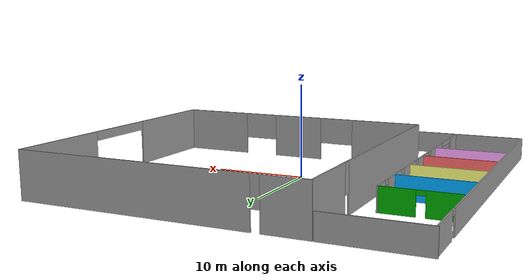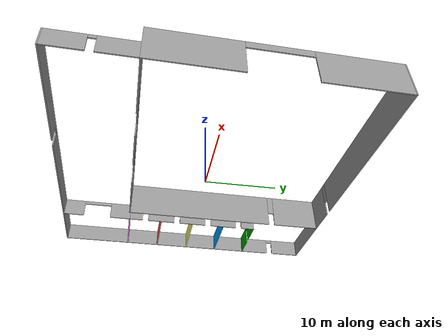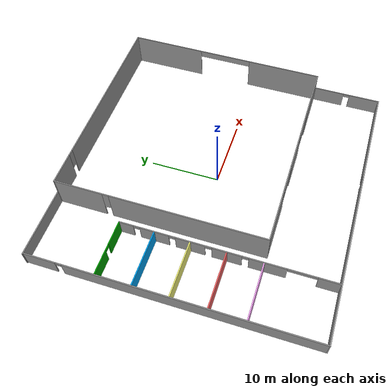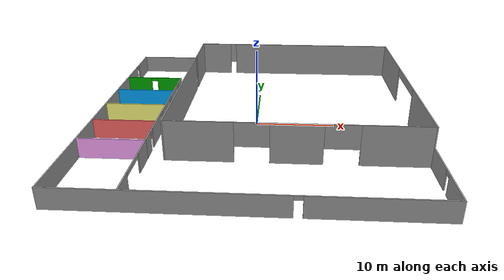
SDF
<?xml version='1.0'?>
<sdf version='1.6'>
  <model name='robotics_lab'>
    <pose frame=''>-0.040499 0 0 0 -0 0</pose>
    <link name='Wall_0'>
      <pose frame=''>5.0405 20 0 0 -0 0</pose>
      <visual name='Wall_0_Visual_0'>
        <pose frame=''>-12.7625 0 2.5 0 -0 0</pose>
        <geometry>
          <box>
            <size>4.625 0.15 5</size>
          </box>
        </geometry>
        <material>
          <script>
            <uri>file://media/materials/scripts/gazebo.material</uri>
            <name>Gazebo/Grey</name>
          </script>
          <ambient>0 0 0 1</ambient>
        </material>
      </visual>
      <collision name='Wall_0_Collision_0'>
        <geometry>
          <box>
            <size>4.625 0.15 5</size>
          </box>
        </geometry>
        <pose frame=''>-12.7625 0 2.5 0 -0 0</pose>
      </collision>
      <visual name='Wall_0_Visual_1'>
        <pose frame=''>2.7625 0 2.5 0 -0 0</pose>
        <geometry>
          <box>
            <size>24.625 0.15 5</size>
          </box>
        </geometry>
        <material>
          <script>
            <uri>file://media/materials/scripts/gazebo.material</uri>
            <name>Gazebo/Grey</name>
          </script>
          <ambient>0 0 0 1</ambient>
        </material>
      </visual>
      <collision name='Wall_0_Collision_1'>
        <geometry>
          <box>
            <size>24.625 0.15 5</size>
          </box>
        </geometry>
        <pose frame=''>2.7625 0 2.5 0 -0 0</pose>
      </collision>
      <visual name='Wall_0_Visual_2'>
        <pose frame=''>-10 0 3.5 0 -0 0</pose>
        <geometry>
          <box>
            <size>0.9 0.15 3</size>
          </box>
        </geometry>
        <material>
          <script>
            <uri>file://media/materials/scripts/gazebo.material</uri>
            <name>Gazebo/Grey</name>
          </script>
          <ambient>0 0 0 1</ambient>
        </material>
      </visual>
      <collision name='Wall_0_Collision_2'>
        <geometry>
          <box>
            <size>0.9 0.15 3</size>
          </box>
        </geometry>
        <pose frame=''>-10 0 3.5 0 -0 0</pose>
      </collision>
    </link>
    <link name='Wall_10'>
      <pose frame=''>-19.9595 0 0 0 0 -1.5708</pose>
      <visual name='Wall_10_Visual_0'>
        <pose frame=''>-17.6875 0 1.25 0 -0 0</pose>
        <geometry>
          <box>
            <size>4.475 0.15 2.5</size>
          </box>
        </geometry>
        <material>
          <script>
            <uri>file://media/materials/scripts/gazebo.material</uri>
            <name>Gazebo/Grey</name>
          </script>
          <ambient>1 1 1 1</ambient>
        </material>
      </visual>
      <collision name='Wall_10_Collision_0'>
        <geometry>
          <box>
            <size>4.475 0.15 2.5</size>
          </box>
        </geometry>
        <pose frame=''>-17.6875 0 1.25 0 -0 0</pose>
      </collision>
      <visual name='Wall_10_Visual_1'>
        <pose frame=''>2.6875 0 1.25 0 -0 0</pose>
        <geometry>
          <box>
            <size>34.475 0.15 2.5</size>
          </box>
        </geometry>
        <material>
          <script>
            <uri>file://media/materials/scripts/gazebo.material</uri>
            <name>Gazebo/Grey</name>
          </script>
          <ambient>1 1 1 1</ambient>
        </material>
      </visual>
      <collision name='Wall_10_Collision_1'>
        <geometry>
          <box>
            <size>34.475 0.15 2.5</size>
          </box>
        </geometry>
        <pose frame=''>2.6875 0 1.25 0 -0 0</pose>
      </collision>
      <visual name='Wall_10_Visual_2'>
        <pose frame=''>-15 0 2.25 0 -0 0</pose>
        <geometry>
          <box>
            <size>0.9 0.15 0.5</size>
          </box>
        </geometry>
        <material>
          <script>
            <uri>file://media/materials/scripts/gazebo.material</uri>
            <name>Gazebo/Grey</name>
          </script>
          <ambient>1 1 1 1</ambient>
        </material>
      </visual>
      <collision name='Wall_10_Collision_2'>
        <geometry>
          <box>
            <size>0.9 0.15 0.5</size>
          </box>
        </geometry>
        <pose frame=''>-15 0 2.25 0 -0 0</pose>
      </collision>
    </link>
    <link name='Wall_12'>
      <pose frame=''>0.040499 -20 0 0 -0 0</pose>
      <visual name='Wall_12_Visual_0'>
        <pose frame=''>-7.7625 0 1.25 0 -0 0</pose>
        <geometry>
          <box>
            <size>24.625 0.15 2.5</size>
          </box>
        </geometry>
        <material>
          <script>
            <uri>file://media/materials/scripts/gazebo.material</uri>
            <name>Gazebo/Grey</name>
          </script>
          <ambient>1 1 1 1</ambient>
        </material>
      </visual>
      <collision name='Wall_12_Collision_0'>
        <geometry>
          <box>
            <size>24.625 0.15 2.5</size>
          </box>
        </geometry>
        <pose frame=''>-7.7625 0 1.25 0 -0 0</pose>
      </collision>
      <visual name='Wall_12_Visual_1'>
        <pose frame=''>12.7625 0 1.25 0 -0 0</pose>
        <geometry>
          <box>
            <size>14.625 0.15 2.5</size>
          </box>
        </geometry>
        <material>
          <script>
            <uri>file://media/materials/scripts/gazebo.material</uri>
            <name>Gazebo/Grey</name>
          </script>
          <ambient>1 1 1 1</ambient>
        </material>
      </visual>
      <collision name='Wall_12_Collision_1'>
        <geometry>
          <box>
            <size>14.625 0.15 2.5</size>
          </box>
        </geometry>
        <pose frame=''>12.7625 0 1.25 0 -0 0</pose>
      </collision>
      <visual name='Wall_12_Visual_2'>
        <pose frame=''>5 0 2.25 0 -0 0</pose>
        <geometry>
          <box>
            <size>0.9 0.15 0.5</size>
          </box>
        </geometry>
        <material>
          <script>
            <uri>file://media/materials/scripts/gazebo.material</uri>
            <name>Gazebo/Grey</name>
          </script>
          <ambient>1 1 1 1</ambient>
        </material>
      </visual>
      <collision name='Wall_12_Collision_2'>
        <geometry>
          <box>
            <size>0.9 0.15 0.5</size>
          </box>
        </geometry>
        <pose frame=''>5 0 2.25 0 -0 0</pose>
      </collision>
    </link>
    <link name='Wall_14'>
      <pose frame=''>20.0405 -15 0 0 0 -1.5708</pose>
      <visual name='Wall_14_Visual_0'>
        <pose frame=''>-2.6875 0 1.25 0 -0 0</pose>
        <geometry>
          <box>
            <size>4.475 0.15 2.5</size>
          </box>
        </geometry>
        <material>
          <script>
            <uri>file://media/materials/scripts/gazebo.material</uri>
            <name>Gazebo/Grey</name>
          </script>
          <ambient>1 1 1 1</ambient>
        </material>
      </visual>
      <collision name='Wall_14_Collision_0'>
        <geometry>
          <box>
            <size>4.475 0.15 2.5</size>
          </box>
        </geometry>
        <pose frame=''>-2.6875 0 1.25 0 -0 0</pose>
      </collision>
      <visual name='Wall_14_Visual_1'>
        <pose frame=''>2.6875 0 1.25 0 -0 0</pose>
        <geometry>
          <box>
            <size>4.475 0.15 2.5</size>
          </box>
        </geometry>
        <material>
          <script>
            <uri>file://media/materials/scripts/gazebo.material</uri>
            <name>Gazebo/Grey</name>
          </script>
          <ambient>1 1 1 1</ambient>
        </material>
      </visual>
      <collision name='Wall_14_Collision_1'>
        <geometry>
          <box>
            <size>4.475 0.15 2.5</size>
          </box>
        </geometry>
        <pose frame=''>2.6875 0 1.25 0 -0 0</pose>
      </collision>
      <visual name='Wall_14_Visual_2'>
        <pose frame=''>0 0 2.25 0 -0 0</pose>
        <geometry>
          <box>
            <size>0.9 0.15 0.5</size>
          </box>
        </geometry>
        <material>
          <script>
            <uri>file://media/materials/scripts/gazebo.material</uri>
            <name>Gazebo/Grey</name>
          </script>
          <ambient>1 1 1 1</ambient>
        </material>
      </visual>
      <collision name='Wall_14_Collision_2'>
        <geometry>
          <box>
            <size>0.9 0.15 0.5</size>
          </box>
        </geometry>
        <pose frame=''>0 0 2.25 0 -0 0</pose>
      </collision>
    </link>
    <link name='Wall_16'>
      <pose frame=''>-15.9595 10 0 0 -0 0</pose>
      <visual name='Wall_16_Visual_0'>
        <pose frame=''>-2.1875 0 1.25 0 -0 0</pose>
        <geometry>
          <box>
            <size>3.475 0.15 2.5</size>
          </box>
        </geometry>
        <material>
          <script>
            <uri>file://media/materials/scripts/gazebo.material</uri>
            <name>Gazebo/Grey</name>
          </script>
          <ambient>0 0.666667 0 1</ambient>
        </material>
      </visual>
      <collision name='Wall_16_Collision_0'>
        <geometry>
          <box>
            <size>3.475 0.15 2.5</size>
          </box>
        </geometry>
        <pose frame=''>-2.1875 0 1.25 0 -0 0</pose>
      </collision>
      <visual name='Wall_16_Visual_1'>
        <pose frame=''>2.1875 0 1.25 0 -0 0</pose>
        <geometry>
          <box>
            <size>3.475 0.15 2.5</size>
          </box>
        </geometry>
        <material>
          <script>
            <uri>file://media/materials/scripts/gazebo.material</uri>
            <name>Gazebo/Grey</name>
          </script>
          <ambient>0 0.666667 0 1</ambient>
        </material>
      </visual>
      <collision name='Wall_16_Collision_1'>
        <geometry>
          <box>
            <size>3.475 0.15 2.5</size>
          </box>
        </geometry>
        <pose frame=''>2.1875 0 1.25 0 -0 0</pose>
      </collision>
      <visual name='Wall_16_Visual_2'>
        <pose frame=''>-0 0 2.25 0 -0 0</pose>
        <geometry>
          <box>
            <size>0.9 0.15 0.5</size>
          </box>
        </geometry>
        <material>
          <script>
            <uri>file://media/materials/scripts/gazebo.material</uri>
            <name>Gazebo/Grey</name>
          </script>
          <ambient>0 0.666667 0 1</ambient>
        </material>
      </visual>
      <collision name='Wall_16_Collision_2'>
        <geometry>
          <box>
            <size>0.9 0.15 0.5</size>
          </box>
        </geometry>
        <pose frame=''>-0 0 2.25 0 -0 0</pose>
      </collision>
    </link>
    <link name='Wall_18'>
      <collision name='Wall_18_Collision'>
        <geometry>
          <box>
            <size>7.85 0.15 2.5</size>
          </box>
        </geometry>
        <pose frame=''>0 0 1.25 0 -0 0</pose>
      </collision>
      <visual name='Wall_18_Visual'>
        <pose frame=''>0 0 1.25 0 -0 0</pose>
        <geometry>
          <box>
            <size>7.85 0.15 2.5</size>
          </box>
        </geometry>
        <material>
          <script>
            <uri>file://media/materials/scripts/gazebo.material</uri>
            <name>Gazebo/Grey</name>
          </script>
          <ambient>0 0.666667 1 1</ambient>
        </material>
      </visual>
      <pose frame=''>-15.9595 5 0 0 -0 0</pose>
    </link>
    <link name='Wall_2'>
      <pose frame=''>20.0405 4.925 0 0 0 -1.5708</pose>
      <visual name='Wall_2_Visual_0'>
        <pose frame=''>-9.5375 0 2.5 0 -0 0</pose>
        <geometry>
          <box>
            <size>10.925 0.15 5</size>
          </box>
        </geometry>
        <material>
          <script>
            <uri>file://media/materials/scripts/gazebo.material</uri>
            <name>Gazebo/Grey</name>
          </script>
          <ambient>0 0 0 1</ambient>
        </material>
      </visual>
      <collision name='Wall_2_Collision_0'>
        <geometry>
          <box>
            <size>10.925 0.15 5</size>
          </box>
        </geometry>
        <pose frame=''>-9.5375 0 2.5 0 -0 0</pose>
      </collision>
      <visual name='Wall_2_Visual_1'>
        <pose frame=''>9.4625 0 2.5 0 -0 0</pose>
        <geometry>
          <box>
            <size>11.075 0.15 5</size>
          </box>
        </geometry>
        <material>
          <script>
            <uri>file://media/materials/scripts/gazebo.material</uri>
            <name>Gazebo/Grey</name>
          </script>
          <ambient>0 0 0 1</ambient>
        </material>
      </visual>
      <collision name='Wall_2_Collision_1'>
        <geometry>
          <box>
            <size>11.075 0.15 5</size>
          </box>
        </geometry>
        <pose frame=''>9.4625 0 2.5 0 -0 0</pose>
      </collision>
      <visual name='Wall_2_Visual_2'>
        <pose frame=''>-0.075 0 4.5 0 -0 0</pose>
        <geometry>
          <box>
            <size>8 0.15 1</size>
          </box>
        </geometry>
        <material>
          <script>
            <uri>file://media/materials/scripts/gazebo.material</uri>
            <name>Gazebo/Grey</name>
          </script>
          <ambient>0 0 0 1</ambient>
        </material>
      </visual>
      <collision name='Wall_2_Collision_2'>
        <geometry>
          <box>
            <size>8 0.15 1</size>
          </box>
        </geometry>
        <pose frame=''>-0.075 0 4.5 0 -0 0</pose>
      </collision>
    </link>
    <link name='Wall_20'>
      <collision name='Wall_20_Collision'>
        <geometry>
          <box>
            <size>7.85 0.15 2.5</size>
          </box>
        </geometry>
        <pose frame=''>0 0 1.25 0 -0 0</pose>
      </collision>
      <visual name='Wall_20_Visual'>
        <pose frame=''>0 0 1.25 0 -0 0</pose>
        <geometry>
          <box>
            <size>7.85 0.15 2.5</size>
          </box>
        </geometry>
        <material>
          <script>
            <uri>file://media/materials/scripts/gazebo.material</uri>
            <name>Gazebo/Grey</name>
          </script>
          <ambient>1 1 0.498039 1</ambient>
        </material>
      </visual>
      <pose frame=''>-15.9595 0 0 0 -0 0</pose>
    </link>
    <link name='Wall_22'>
      <collision name='Wall_22_Collision'>
        <geometry>
          <box>
            <size>7.85 0.15 2.5</size>
          </box>
        </geometry>
        <pose frame=''>0 0 1.25 0 -0 0</pose>
      </collision>
      <visual name='Wall_22_Visual'>
        <pose frame=''>0 0 1.25 0 -0 0</pose>
        <geometry>
          <box>
            <size>7.85 0.15 2.5</size>
          </box>
        </geometry>
        <material>
          <script>
            <uri>file://media/materials/scripts/gazebo.material</uri>
            <name>Gazebo/Grey</name>
          </script>
          <ambient>1 0.411765 0.411765 1</ambient>
        </material>
      </visual>
      <pose frame=''>-15.9595 -5 0 0 -0 0</pose>
    </link>
    <link name='Wall_24'>
      <collision name='Wall_24_Collision'>
        <geometry>
          <box>
            <size>7.85 0.15 2.5</size>
          </box>
        </geometry>
        <pose frame=''>0 0 1.25 0 -0 0</pose>
      </collision>
      <visual name='Wall_24_Visual'>
        <pose frame=''>0 0 1.25 0 -0 0</pose>
        <geometry>
          <box>
            <size>7.85 0.15 2.5</size>
          </box>
        </geometry>
        <material>
          <script>
            <uri>file://media/materials/scripts/gazebo.material</uri>
            <name>Gazebo/Grey</name>
          </script>
          <ambient>1 0.666667 1 1</ambient>
        </material>
      </visual>
      <pose frame=''>-15.9595 -10 0 0 -0 0</pose>
    </link>
    <link name='Wall_26'>
      <pose frame=''>-11.9595 0 0 0 0 -1.5708</pose>
      <visual name='Wall_26_Visual_0'>
        <pose frame=''>-9.0125 0 1.25 0 -0 0</pose>
        <geometry>
          <box>
            <size>2.125 0.15 2.5</size>
          </box>
        </geometry>
        <material>
          <script>
            <uri>file://media/materials/scripts/gazebo.material</uri>
            <name>Gazebo/Grey</name>
          </script>
          <ambient>1 1 1 1</ambient>
        </material>
      </visual>
      <collision name='Wall_26_Collision_0'>
        <geometry>
          <box>
            <size>2.125 0.15 2.5</size>
          </box>
        </geometry>
        <pose frame=''>-9.0125 0 1.25 0 -0 0</pose>
      </collision>
      <visual name='Wall_26_Visual_1'>
        <pose frame=''>-5 0 1.25 0 -0 0</pose>
        <geometry>
          <box>
            <size>4.1 0.15 2.5</size>
          </box>
        </geometry>
        <material>
          <script>
            <uri>file://media/materials/scripts/gazebo.material</uri>
            <name>Gazebo/Grey</name>
          </script>
          <ambient>1 1 1 1</ambient>
        </material>
      </visual>
      <collision name='Wall_26_Collision_1'>
        <geometry>
          <box>
            <size>4.1 0.15 2.5</size>
          </box>
        </geometry>
        <pose frame=''>-5 0 1.25 0 -0 0</pose>
      </collision>
      <visual name='Wall_26_Visual_2'>
        <pose frame=''>0 0 1.25 0 -0 0</pose>
        <geometry>
          <box>
            <size>4.1 0.15 2.5</size>
          </box>
        </geometry>
        <material>
          <script>
            <uri>file://media/materials/scripts/gazebo.material</uri>
            <name>Gazebo/Grey</name>
          </script>
          <ambient>1 1 1 1</ambient>
        </material>
      </visual>
      <collision name='Wall_26_Collision_2'>
        <geometry>
          <box>
            <size>4.1 0.15 2.5</size>
          </box>
        </geometry>
        <pose frame=''>0 0 1.25 0 -0 0</pose>
      </collision>
      <visual name='Wall_26_Visual_3'>
        <pose frame=''>5 0 1.25 0 -0 0</pose>
        <geometry>
          <box>
            <size>4.1 0.15 2.5</size>
          </box>
        </geometry>
        <material>
          <script>
            <uri>file://media/materials/scripts/gazebo.material</uri>
            <name>Gazebo/Grey</name>
          </script>
          <ambient>1 1 1 1</ambient>
        </material>
      </visual>
      <collision name='Wall_26_Collision_3'>
        <geometry>
          <box>
            <size>4.1 0.15 2.5</size>
          </box>
        </geometry>
        <pose frame=''>5 0 1.25 0 -0 0</pose>
      </collision>
      <visual name='Wall_26_Visual_4'>
        <pose frame=''>9.0125 0 1.25 0 -0 0</pose>
        <geometry>
          <box>
            <size>2.125 0.15 2.5</size>
          </box>
        </geometry>
        <material>
          <script>
            <uri>file://media/materials/scripts/gazebo.material</uri>
            <name>Gazebo/Grey</name>
          </script>
          <ambient>1 1 1 1</ambient>
        </material>
      </visual>
      <collision name='Wall_26_Collision_4'>
        <geometry>
          <box>
            <size>2.125 0.15 2.5</size>
          </box>
        </geometry>
        <pose frame=''>9.0125 0 1.25 0 -0 0</pose>
      </collision>
      <visual name='Wall_26_Visual_5'>
        <pose frame=''>-7.5 0 2.25 0 -0 0</pose>
        <geometry>
          <box>
            <size>0.9 0.15 0.5</size>
          </box>
        </geometry>
        <material>
          <script>
            <uri>file://media/materials/scripts/gazebo.material</uri>
            <name>Gazebo/Grey</name>
          </script>
          <ambient>1 1 1 1</ambient>
        </material>
      </visual>
      <collision name='Wall_26_Collision_5'>
        <geometry>
          <box>
            <size>0.9 0.15 0.5</size>
          </box>
        </geometry>
        <pose frame=''>-7.5 0 2.25 0 -0 0</pose>
      </collision>
      <visual name='Wall_26_Visual_6'>
        <pose frame=''>-2.5 0 2.25 0 -0 0</pose>
        <geometry>
          <box>
            <size>0.9 0.15 0.5</size>
          </box>
        </geometry>
        <material>
          <script>
            <uri>file://media/materials/scripts/gazebo.material</uri>
            <name>Gazebo/Grey</name>
          </script>
          <ambient>1 1 1 1</ambient>
        </material>
      </visual>
      <collision name='Wall_26_Collision_6'>
        <geometry>
          <box>
            <size>0.9 0.15 0.5</size>
          </box>
        </geometry>
        <pose frame=''>-2.5 0 2.25 0 -0 0</pose>
      </collision>
      <visual name='Wall_26_Visual_7'>
        <pose frame=''>2.5 0 2.25 0 -0 0</pose>
        <geometry>
          <box>
            <size>0.9 0.15 0.5</size>
          </box>
        </geometry>
        <material>
          <script>
            <uri>file://media/materials/scripts/gazebo.material</uri>
            <name>Gazebo/Grey</name>
          </script>
          <ambient>1 1 1 1</ambient>
        </material>
      </visual>
      <collision name='Wall_26_Collision_7'>
        <geometry>
          <box>
            <size>0.9 0.15 0.5</size>
          </box>
        </geometry>
        <pose frame=''>2.5 0 2.25 0 -0 0</pose>
      </collision>
      <visual name='Wall_26_Visual_8'>
        <pose frame=''>7.5 0 2.25 0 -0 0</pose>
        <geometry>
          <box>
            <size>0.9 0.15 0.5</size>
          </box>
        </geometry>
        <material>
          <script>
            <uri>file://media/materials/scripts/gazebo.material</uri>
            <name>Gazebo/Grey</name>
          </script>
          <ambient>1 1 1 1</ambient>
        </material>
      </visual>
      <collision name='Wall_26_Collision_8'>
        <geometry>
          <box>
            <size>0.9 0.15 0.5</size>
          </box>
        </geometry>
        <pose frame=''>7.5 0 2.25 0 -0 0</pose>
      </collision>
    </link>
    <link name='Wall_30'>
      <pose frame=''>-11.9595 -14.925 0 0 0 -1.5708</pose>
      <visual name='Wall_30_Visual_0'>
        <pose frame=''>-3.4625 0 1.25 0 -0 0</pose>
        <geometry>
          <box>
            <size>3.075 0.15 2.5</size>
          </box>
        </geometry>
        <material>
          <script>
            <uri>file://media/materials/scripts/gazebo.material</uri>
            <name>Gazebo/Grey</name>
          </script>
          <ambient>1 1 1 1</ambient>
        </material>
      </visual>
      <collision name='Wall_30_Collision_0'>
        <geometry>
          <box>
            <size>3.075 0.15 2.5</size>
          </box>
        </geometry>
        <pose frame=''>-3.4625 0 1.25 0 -0 0</pose>
      </collision>
      <visual name='Wall_30_Visual_1'>
        <pose frame=''>3.5375 0 1.25 0 -0 0</pose>
        <geometry>
          <box>
            <size>2.925 0.15 2.5</size>
          </box>
        </geometry>
        <material>
          <script>
            <uri>file://media/materials/scripts/gazebo.material</uri>
            <name>Gazebo/Grey</name>
          </script>
          <ambient>1 1 1 1</ambient>
        </material>
      </visual>
      <collision name='Wall_30_Collision_1'>
        <geometry>
          <box>
            <size>2.925 0.15 2.5</size>
          </box>
        </geometry>
        <pose frame=''>3.5375 0 1.25 0 -0 0</pose>
      </collision>
      <visual name='Wall_30_Visual_2'>
        <pose frame=''>0.075 0 2.25 0 -0 0</pose>
        <geometry>
          <box>
            <size>4 0.15 0.5</size>
          </box>
        </geometry>
        <material>
          <script>
            <uri>file://media/materials/scripts/gazebo.material</uri>
            <name>Gazebo/Grey</name>
          </script>
          <ambient>1 1 1 1</ambient>
        </material>
      </visual>
      <collision name='Wall_30_Collision_2'>
        <geometry>
          <box>
            <size>4 0.15 0.5</size>
          </box>
        </geometry>
        <pose frame=''>0.075 0 2.25 0 -0 0</pose>
      </collision>
    </link>
    <link name='Wall_4'>
      <pose frame=''>5.0405 -10 0 0 -0 0</pose>
      <visual name='Wall_4_Visual_0'>
        <pose frame=''>-10.9625 0 2.5 0 -0 0</pose>
        <geometry>
          <box>
            <size>7.925 0.15 5</size>
          </box>
        </geometry>
        <material>
          <script>
            <uri>file://media/materials/scripts/gazebo.material</uri>
            <name>Gazebo/Grey</name>
          </script>
          <ambient>0 0 0 1</ambient>
        </material>
      </visual>
      <collision name='Wall_4_Collision_0'>
        <geometry>
          <box>
            <size>7.925 0.15 5</size>
          </box>
        </geometry>
        <pose frame=''>-10.9625 0 2.5 0 -0 0</pose>
      </collision>
      <visual name='Wall_4_Visual_1'>
        <pose frame=''>0 0 2.5 0 -0 0</pose>
        <geometry>
          <box>
            <size>6 0.15 5</size>
          </box>
        </geometry>
        <material>
          <script>
            <uri>file://media/materials/scripts/gazebo.material</uri>
            <name>Gazebo/Grey</name>
          </script>
          <ambient>0 0 0 1</ambient>
        </material>
      </visual>
      <collision name='Wall_4_Collision_1'>
        <geometry>
          <box>
            <size>6 0.15 5</size>
          </box>
        </geometry>
        <pose frame=''>0 0 2.5 0 -0 0</pose>
      </collision>
      <visual name='Wall_4_Visual_2'>
        <pose frame=''>10.9625 0 2.5 0 -0 0</pose>
        <geometry>
          <box>
            <size>7.925 0.15 5</size>
          </box>
        </geometry>
        <material>
          <script>
            <uri>file://media/materials/scripts/gazebo.material</uri>
            <name>Gazebo/Grey</name>
          </script>
          <ambient>0 0 0 1</ambient>
        </material>
      </visual>
      <collision name='Wall_4_Collision_2'>
        <geometry>
          <box>
            <size>7.925 0.15 5</size>
          </box>
        </geometry>
        <pose frame=''>10.9625 0 2.5 0 -0 0</pose>
      </collision>
      <visual name='Wall_4_Visual_3'>
        <pose frame=''>-5 0 3.5 0 -0 0</pose>
        <geometry>
          <box>
            <size>4 0.15 3</size>
          </box>
        </geometry>
        <material>
          <script>
            <uri>file://media/materials/scripts/gazebo.material</uri>
            <name>Gazebo/Grey</name>
          </script>
          <ambient>0 0 0 1</ambient>
        </material>
      </visual>
      <collision name='Wall_4_Collision_3'>
        <geometry>
          <box>
            <size>4 0.15 3</size>
          </box>
        </geometry>
        <pose frame=''>-5 0 3.5 0 -0 0</pose>
      </collision>
      <visual name='Wall_4_Visual_4'>
        <pose frame=''>5 0 3.5 0 -0 0</pose>
        <geometry>
          <box>
            <size>4 0.15 3</size>
          </box>
        </geometry>
        <material>
          <script>
            <uri>file://media/materials/scripts/gazebo.material</uri>
            <name>Gazebo/Grey</name>
          </script>
          <ambient>0 0 0 1</ambient>
        </material>
      </visual>
      <collision name='Wall_4_Collision_4'>
        <geometry>
          <box>
            <size>4 0.15 3</size>
          </box>
        </geometry>
        <pose frame=''>5 0 3.5 0 -0 0</pose>
      </collision>
    </link>
    <link name='Wall_6'>
      <pose frame=''>-9.9595 4.925 0 0 0 -1.5708</pose>
      <visual name='Wall_6_Visual_0'>
        <pose frame=''>-11.5125 0 2.5 0 -0 0</pose>
        <geometry>
          <box>
            <size>6.975 0.15 5</size>
          </box>
        </geometry>
        <material>
          <script>
            <uri>file://media/materials/scripts/gazebo.material</uri>
            <name>Gazebo/Grey</name>
          </script>
          <ambient>0 0 0 1</ambient>
        </material>
      </visual>
      <collision name='Wall_6_Collision_0'>
        <geometry>
          <box>
            <size>6.975 0.15 5</size>
          </box>
        </geometry>
        <pose frame=''>-11.5125 0 2.5 0 -0 0</pose>
      </collision>
      <visual name='Wall_6_Visual_1'>
        <pose frame=''>3.9375 0 2.5 0 -0 0</pose>
        <geometry>
          <box>
            <size>22.125 0.15 5</size>
          </box>
        </geometry>
        <material>
          <script>
            <uri>file://media/materials/scripts/gazebo.material</uri>
            <name>Gazebo/Grey</name>
          </script>
          <ambient>0 0 0 1</ambient>
        </material>
      </visual>
      <collision name='Wall_6_Collision_1'>
        <geometry>
          <box>
            <size>22.125 0.15 5</size>
          </box>
        </geometry>
        <pose frame=''>3.9375 0 2.5 0 -0 0</pose>
      </collision>
      <visual name='Wall_6_Visual_2'>
        <pose frame=''>-7.575 0 3.5 0 -0 0</pose>
        <geometry>
          <box>
            <size>0.9 0.15 3</size>
          </box>
        </geometry>
        <material>
          <script>
            <uri>file://media/materials/scripts/gazebo.material</uri>
            <name>Gazebo/Grey</name>
          </script>
          <ambient>0 0 0 1</ambient>
        </material>
      </visual>
      <collision name='Wall_6_Collision_2'>
        <geometry>
          <box>
            <size>0.9 0.15 3</size>
          </box>
        </geometry>
        <pose frame=''>-7.575 0 3.5 0 -0 0</pose>
      </collision>
    </link>
    <link name='Wall_8'>
      <collision name='Wall_8_Collision'>
        <geometry>
          <box>
            <size>10 0.15 2.5</size>
          </box>
        </geometry>
        <pose frame=''>0 0 1.25 0 -0 0</pose>
      </collision>
      <visual name='Wall_8_Visual'>
        <pose frame=''>0 0 1.25 0 -0 0</pose>
        <geometry>
          <box>
            <size>10 0.15 2.5</size>
          </box>
        </geometry>
        <material>
          <script>
            <uri>file://media/materials/scripts/gazebo.material</uri>
            <name>Gazebo/Grey</name>
          </script>
          <ambient>1 1 1 1</ambient>
        </material>
      </visual>
      <pose frame=''>-15.1155 20 0 0 -0 0</pose>
    </link>
    <static>1</static>
  </model>
</sdf>
